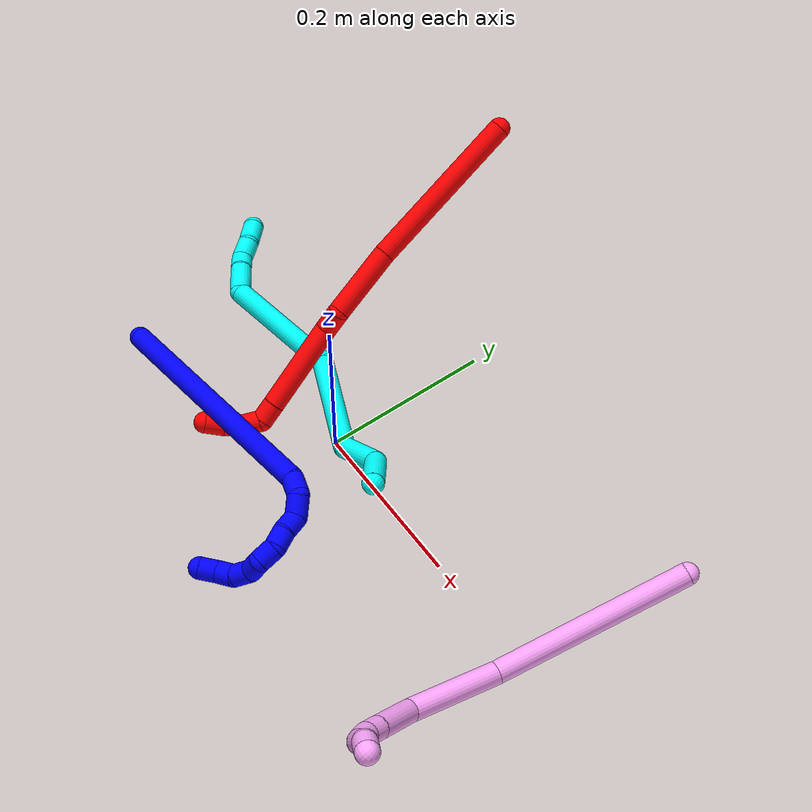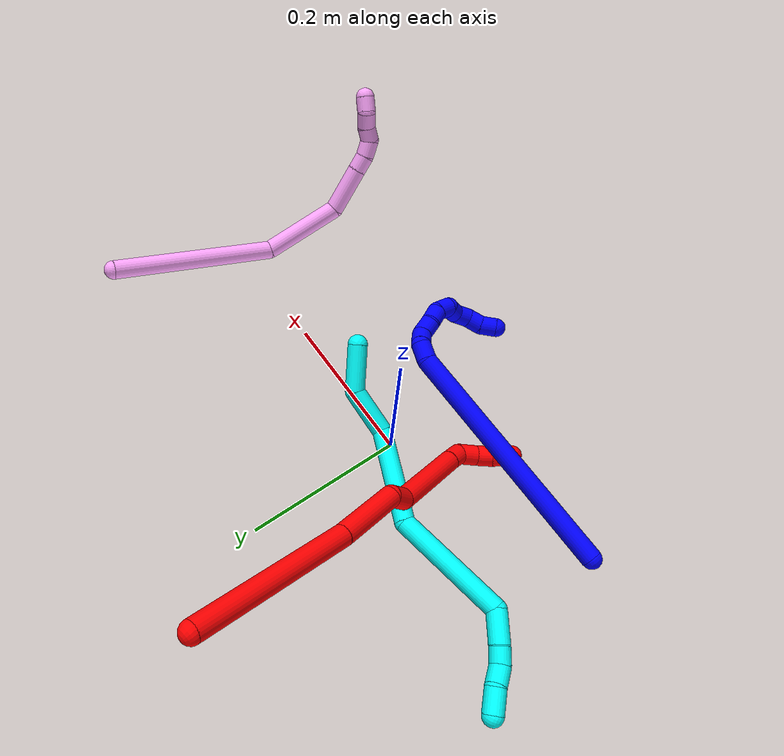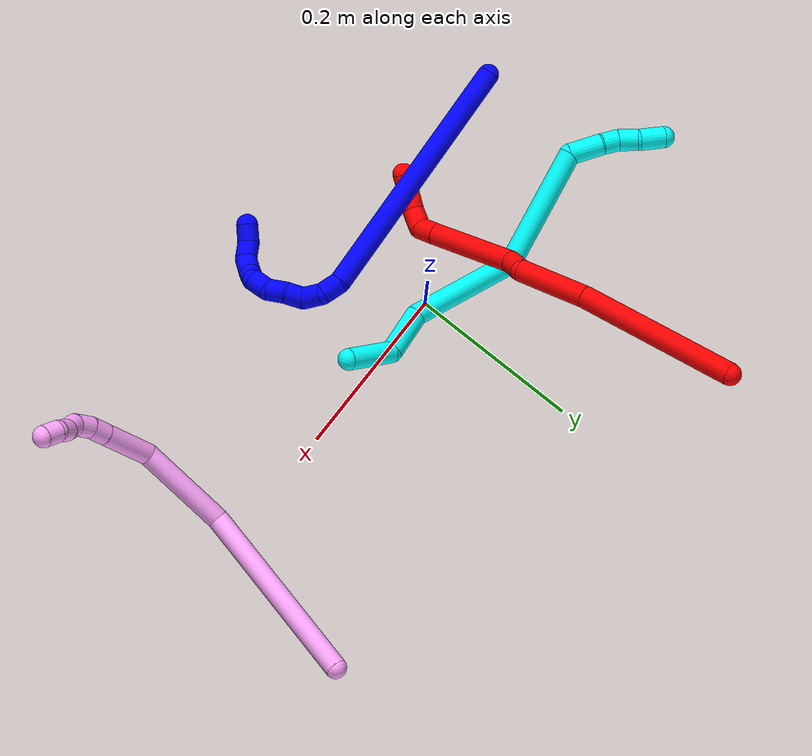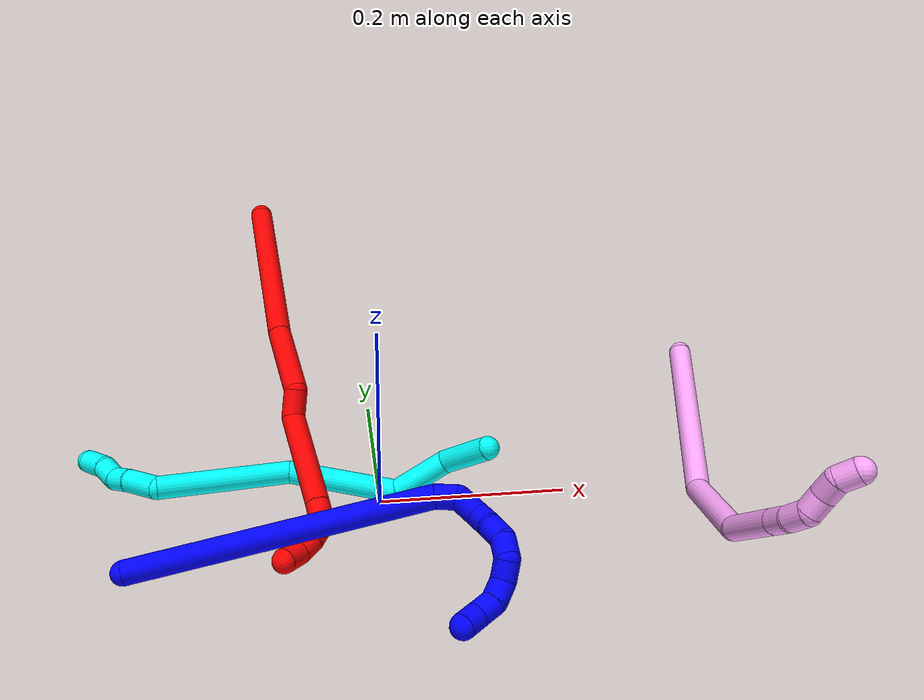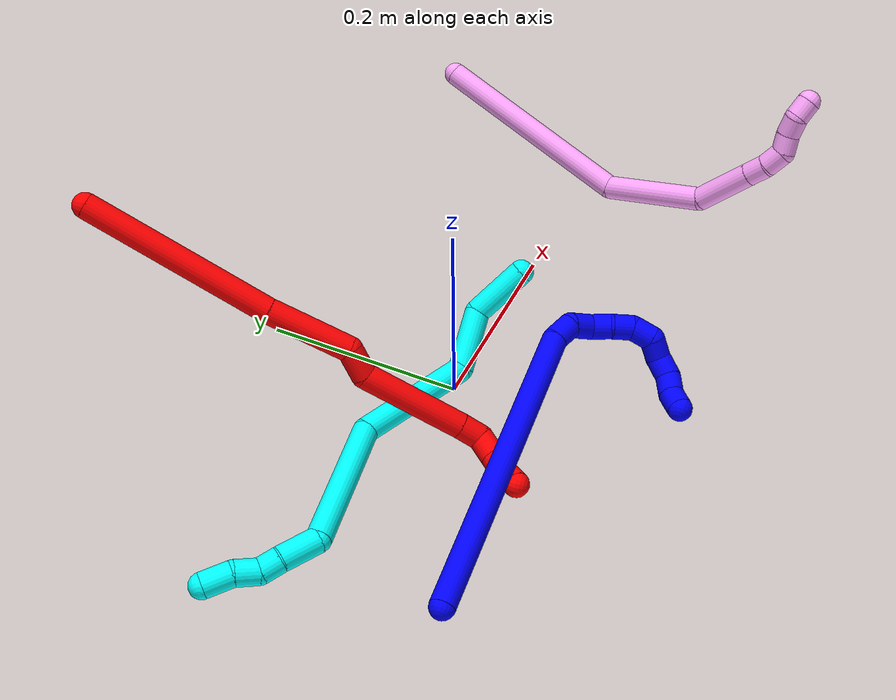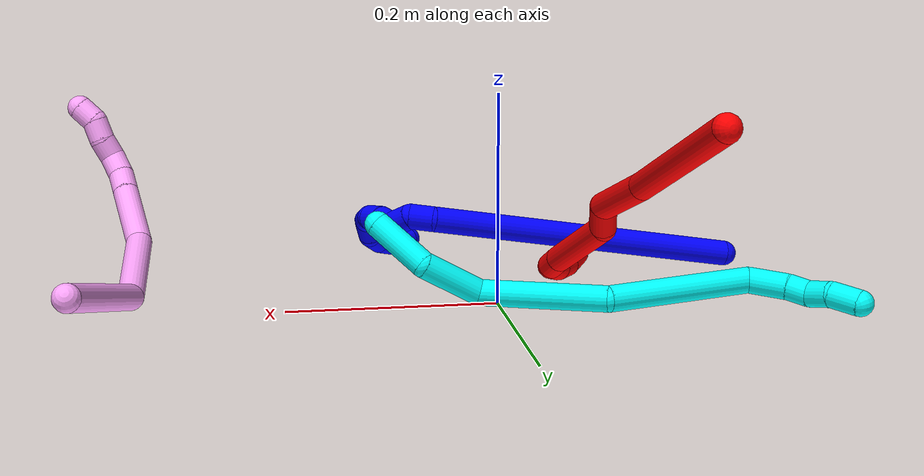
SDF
<sdf version="1.7">
 <world name="default">
  <plugin name="TubeGeneratorPlugin" filename="libtube_generator_plugin.so"/>
  <model name="photoneo_s_sensor">
   <static>1</static>
   <pose>0 0 2 1.57079 1.57079 3.14159</pose>
   <link name="link">
    <inertial><mass>0.1</mass></inertial>
    <sensor name="sensor" type="depth">
     <update_rate>30</update_rate>
     <camera>
      <horizontal_fov>1.22</horizontal_fov>
      <image><width>1920</width><height>1200</height><format>B8G8R8</format></image>
      <clip><near>0.1</near><far>4</far></clip>
      <depth_camera><output>points</output></depth_camera>
     </camera>
     <plugin name="camera_plugin" filename="libgazebo_ros_depth_camera.so">
      <baseline>0.2</baseline>
      <alwaysOn>1</alwaysOn>
      <updateRate>0.0</updateRate>
      <cameraName>camera_ir</cameraName>
      <imageTopicName>/camera/color/image_raw</imageTopicName>
      <cameraInfoTopicName>/camera/color/camera_info</cameraInfoTopicName>
      <depthImageTopicName>/camera/depth/image_raw</depthImageTopicName>
      <depthImageCameraInfoTopicName>/camera/depth/camera_info</depthImageCameraInfoTopicName>
      <pointCloudTopicName>/camera/depth/points</pointCloudTopicName>
      <frameName>fr_optical</frameName>
      <pointCloudCutoff>0.1</pointCloudCutoff>
      <pointCloudCutoffMax>2.0</pointCloudCutoffMax>
      <distortionK1>0</distortionK1>
      <distortionK2>0</distortionK2>
      <distortionK3>0</distortionK3>
      <distortionT1>0</distortionT1>
      <distortionT2>0</distortionT2>
      <CxPrime>0</CxPrime>
      <Cx>0</Cx>
      <Cy>0</Cy>
      <focalLength>0</focalLength>
      <hackBaseline>0</hackBaseline>
     </plugin>
    </sensor>
   </link>
  </model>
  <gravity>0 0 -9.8</gravity>
  <magnetic_field>6e-06 2.3e-05 -4.2e-05</magnetic_field>
  <atmosphere type="adiabatic"/>
  <physics name="default_physics" default="0" type="ode">
   <max_step_size>0.003</max_step_size>
   <real_time_factor>1</real_time_factor>
   <real_time_update_rate>1000</real_time_update_rate>
   <max_contacts>10000</max_contacts>
   <ode>
    <solver>
     <type>quick</type>
     <iters>100</iters>
     <sor>1.3</sor>
     <use_dynamic_moi_rescaling>0</use_dynamic_moi_rescaling>
    </solver>
    <constraints>
     <contact_max_correcting_vel>0</contact_max_correcting_vel>
     <contact_surface_layer>0.001</contact_surface_layer>
     <cfm>0</cfm>
     <erp>0.2</erp>
    </constraints>
   </ode>
  </physics>
  <scene><ambient>0.4 0.4 0.4 1</ambient><background>0.7 0.7 0.7 1</background><shadows>0</shadows></scene>
  <audio><device>default</device></audio>
  <spherical_coordinates>
   <surface_model>EARTH_WGS84</surface_model>
   <latitude_deg>0</latitude_deg>
   <longitude_deg>0</longitude_deg>
   <elevation>0</elevation>
   <heading_deg>0</heading_deg>
  </spherical_coordinates>
  <model name="bin">
   <static>1</static>
   <link name="bottom">
    <collision name="collision-bottom">
     <pose>0 0 -0.01 0 -0 0</pose>
     <geometry><box><size>0.8 0.6 0.02</size></box></geometry>
     <surface>
      <friction><ode><mu>100</mu><mu2>100</mu2></ode></friction>
      <contact><collide_bitmask>65535</collide_bitmask></contact>
     </surface>
    </collision>
   </link>
   <link name="west_wall">
    <collision name="collision-west_wall">
     <pose>-0.41 0 0.1 0 -0 0</pose>
     <geometry><box><size>0.02 0.6 0.2</size></box></geometry>
     <surface>
      <friction><ode><mu>100</mu><mu2>100</mu2></ode></friction>
      <contact><collide_bitmask>65535</collide_bitmask></contact>
     </surface>
    </collision>
   </link>
   <link name="east_wall">
    <collision name="collision-east_wall">
     <pose>0.41 0 0.1 0 -0 0</pose>
     <geometry><box><size>0.02 0.6 0.2</size></box></geometry>
     <surface>
      <friction><ode><mu>100</mu><mu2>100</mu2></ode></friction>
      <contact><collide_bitmask>65535</collide_bitmask></contact>
     </surface>
    </collision>
   </link>
   <link name="south_wall">
    <collision name="collision-south_wall">
     <pose>0 -0.31 0.1 0 -0 0</pose>
     <geometry><box><size>0.8 0.02 0.2</size></box></geometry>
     <surface>
      <friction><ode><mu>100</mu><mu2>100</mu2></ode></friction>
      <contact><collide_bitmask>65535</collide_bitmask></contact>
     </surface>
    </collision>
   </link>
   <link name="north_wall">
    <collision name="collision-north_wall">
     <pose>0 0.31 0.1 0 -0 0</pose>
     <geometry><box><size>0.8 0.02 0.2</size></box></geometry>
     <surface>
      <friction><ode><mu>100</mu><mu2>100</mu2></ode></friction>
      <contact><collide_bitmask>65535</collide_bitmask></contact>
     </surface>
    </collision>
   </link>
  </model>
  <model name="1">
   <static>0</static>
   <link name="1">
    <collision name="collision-cylinder-e_1_1_4">
     <pose>0.029454 0.008319 0.14926 -0.055679 0.194532 -0.005434</pose>
     <geometry><cylinder><radius>0.0125</radius><length>0.304732</length></cylinder></geometry>
     <surface>
      <friction><ode><mu>1.16</mu><mu2>1.16</mu2><slip1>0</slip1><slip2>0</slip2></ode></friction>
      <contact><ode><kp>1e+06</kp><kd>1</kd><max_vel>0</max_vel><min_depth>0.001</min_depth></ode></contact>
     </surface>
    </collision>
    <visual name="visual-cylinder-e_1_1_4">
     <pose>0.029454 0.008319 0.14926 -0.055679 0.194532 -0.005434</pose>
     <geometry><cylinder><radius>0.0125</radius><length>0.304732</length></cylinder></geometry>
     <material><ambient>0 0 1 1</ambient></material>
    </visual>
    <collision name="collision-cylinder-e_2_4_5">
     <pose>0.063606 0.013683 0.308942 0.27637 0.409285 0.057712</pose>
     <geometry><cylinder><radius>0.0125</radius><length>0.023614</length></cylinder></geometry>
     <surface>
      <friction><ode><mu>1.16</mu><mu2>1.16</mu2><slip1>0</slip1><slip2>0</slip2></ode></friction>
      <contact><ode><kp>1e+06</kp><kd>1</kd><max_vel>0</max_vel><min_depth>0.001</min_depth></ode></contact>
     </surface>
    </collision>
    <visual name="visual-cylinder-e_2_4_5">
     <pose>0.063606 0.013683 0.308942 0.27637 0.409285 0.057712</pose>
     <geometry><cylinder><radius>0.0125</radius><length>0.023614</length></cylinder></geometry>
     <material><ambient>0 0 1 1</ambient></material>
    </visual>
    <collision name="collision-cylinder-e_3_5_6">
     <pose>0.078785 0.006841 0.324276 0.669295 1.03205 0.389525</pose>
     <geometry><cylinder><radius>0.0125</radius><length>0.024421</length></cylinder></geometry>
     <surface>
      <friction><ode><mu>1.16</mu><mu2>1.16</mu2><slip1>0</slip1><slip2>0</slip2></ode></friction>
      <contact><ode><kp>1e+06</kp><kd>1</kd><max_vel>0</max_vel><min_depth>0.001</min_depth></ode></contact>
     </surface>
    </collision>
    <visual name="visual-cylinder-e_3_5_6">
     <pose>0.078785 0.006841 0.324276 0.669295 1.03205 0.389525</pose>
     <geometry><cylinder><radius>0.0125</radius><length>0.024421</length></cylinder></geometry>
     <material><ambient>0 0 1 1</ambient></material>
    </visual>
    <collision name="collision-cylinder-e_4_6_7">
     <pose>0.094056 -0.006242 0.332107 1.2635 0.460883 0.340056</pose>
     <geometry><cylinder><radius>0.0125</radius><length>0.021543</length></cylinder></geometry>
     <surface>
      <friction><ode><mu>1.16</mu><mu2>1.16</mu2><slip1>0</slip1><slip2>0</slip2></ode></friction>
      <contact><ode><kp>1e+06</kp><kd>1</kd><max_vel>0</max_vel><min_depth>0.001</min_depth></ode></contact>
     </surface>
    </collision>
    <visual name="visual-cylinder-e_4_6_7">
     <pose>0.094056 -0.006242 0.332107 1.2635 0.460883 0.340056</pose>
     <geometry><cylinder><radius>0.0125</radius><length>0.021543</length></cylinder></geometry>
     <material><ambient>0 0 1 1</ambient></material>
    </visual>
    <collision name="collision-cylinder-e_5_7_8">
     <pose>0.105461 -0.022839 0.338096 1.17755 0.690079 0.471113</pose>
     <geometry><cylinder><radius>0.0125</radius><length>0.02078</length></cylinder></geometry>
     <surface>
      <friction><ode><mu>1.16</mu><mu2>1.16</mu2><slip1>0</slip1><slip2>0</slip2></ode></friction>
      <contact><ode><kp>1e+06</kp><kd>1</kd><max_vel>0</max_vel><min_depth>0.001</min_depth></ode></contact>
     </surface>
    </collision>
    <visual name="visual-cylinder-e_5_7_8">
     <pose>0.105461 -0.022839 0.338096 1.17755 0.690079 0.471113</pose>
     <geometry><cylinder><radius>0.0125</radius><length>0.02078</length></cylinder></geometry>
     <material><ambient>0 0 1 1</ambient></material>
    </visual>
    <collision name="collision-cylinder-e_6_8_9">
     <pose>0.119561 -0.038026 0.339157 1.82336 0.749666 0.939826</pose>
     <geometry><cylinder><radius>0.0125</radius><length>0.021972</length></cylinder></geometry>
     <surface>
      <friction><ode><mu>1.16</mu><mu2>1.16</mu2><slip1>0</slip1><slip2>0</slip2></ode></friction>
      <contact><ode><kp>1e+06</kp><kd>1</kd><max_vel>0</max_vel><min_depth>0.001</min_depth></ode></contact>
     </surface>
    </collision>
    <visual name="visual-cylinder-e_6_8_9">
     <pose>0.119561 -0.038026 0.339157 1.82336 0.749666 0.939826</pose>
     <geometry><cylinder><radius>0.0125</radius><length>0.021972</length></cylinder></geometry>
     <material><ambient>0 0 1 1</ambient></material>
    </visual>
    <collision name="collision-cylinder-e_7_9_10">
     <pose>0.135495 -0.046538 0.331186 3.02024 0.952779 2.90721</pose>
     <geometry><cylinder><radius>0.0125</radius><length>0.020731</length></cylinder></geometry>
     <surface>
      <friction><ode><mu>1.16</mu><mu2>1.16</mu2><slip1>0</slip1><slip2>0</slip2></ode></friction>
      <contact><ode><kp>1e+06</kp><kd>1</kd><max_vel>0</max_vel><min_depth>0.001</min_depth></ode></contact>
     </surface>
    </collision>
    <visual name="visual-cylinder-e_7_9_10">
     <pose>0.135495 -0.046538 0.331186 3.02024 0.952779 2.90721</pose>
     <geometry><cylinder><radius>0.0125</radius><length>0.020731</length></cylinder></geometry>
     <material><ambient>0 0 1 1</ambient></material>
    </visual>
    <collision name="collision-cylinder-e_8_10_11">
     <pose>0.149308 -0.052431 0.317719 2.53881 0.532165 1.43963</pose>
     <geometry><cylinder><radius>0.0125</radius><length>0.021145</length></cylinder></geometry>
     <surface>
      <friction><ode><mu>1.16</mu><mu2>1.16</mu2><slip1>0</slip1><slip2>0</slip2></ode></friction>
      <contact><ode><kp>1e+06</kp><kd>1</kd><max_vel>0</max_vel><min_depth>0.001</min_depth></ode></contact>
     </surface>
    </collision>
    <visual name="visual-cylinder-e_8_10_11">
     <pose>0.149308 -0.052431 0.317719 2.53881 0.532165 1.43963</pose>
     <geometry><cylinder><radius>0.0125</radius><length>0.021145</length></cylinder></geometry>
     <material><ambient>0 0 1 1</ambient></material>
    </visual>
    <collision name="collision-cylinder-e_9_11_12">
     <pose>0.155836 -0.061528 0.301012 2.73779 0.115821 0.552013</pose>
     <geometry><cylinder><radius>0.0125</radius><length>0.02015</length></cylinder></geometry>
     <surface>
      <friction><ode><mu>1.16</mu><mu2>1.16</mu2><slip1>0</slip1><slip2>0</slip2></ode></friction>
      <contact><ode><kp>1e+06</kp><kd>1</kd><max_vel>0</max_vel><min_depth>0.001</min_depth></ode></contact>
     </surface>
    </collision>
    <visual name="visual-cylinder-e_9_11_12">
     <pose>0.155836 -0.061528 0.301012 2.73779 0.115821 0.552013</pose>
     <geometry><cylinder><radius>0.0125</radius><length>0.02015</length></cylinder></geometry>
     <material><ambient>0 0 1 1</ambient></material>
    </visual>
    <collision name="collision-cylinder-e_10_12_2">
     <pose>0.156623 -0.072648 0.284225 2.383 -0.0361 -0.090515</pose>
     <geometry><cylinder><radius>0.0125</radius><length>0.020912</length></cylinder></geometry>
     <surface>
      <friction><ode><mu>1.16</mu><mu2>1.16</mu2><slip1>0</slip1><slip2>0</slip2></ode></friction>
      <contact><ode><kp>1e+06</kp><kd>1</kd><max_vel>0</max_vel><min_depth>0.001</min_depth></ode></contact>
     </surface>
    </collision>
    <visual name="visual-cylinder-e_10_12_2">
     <pose>0.156623 -0.072648 0.284225 2.383 -0.0361 -0.090515</pose>
     <geometry><cylinder><radius>0.0125</radius><length>0.020912</length></cylinder></geometry>
     <material><ambient>0 0 1 1</ambient></material>
    </visual>
    <collision name="collision-sphere-2">
     <pose>0.156246 -0.079836 0.276641 0 -0 0</pose>
     <geometry><sphere><radius>0.0125</radius></sphere></geometry>
     <surface>
      <friction><ode><mu>1.16</mu><mu2>1.16</mu2><slip1>0</slip1><slip2>0</slip2></ode></friction>
      <contact><ode><kp>1e+06</kp><kd>1</kd><max_vel>0</max_vel><min_depth>0.001</min_depth></ode></contact>
     </surface>
    </collision>
    <visual name="visual-sphere-2">
     <pose>0.156246 -0.079836 0.276641 0 -0 0</pose>
     <geometry><sphere><radius>0.0125</radius></sphere></geometry>
     <material><ambient>0 0 1 1</ambient></material>
    </visual>
    <collision name="collision-sphere-12">
     <pose>0.157001 -0.06546 0.291809 0 -0 0</pose>
     <geometry><sphere><radius>0.0125</radius></sphere></geometry>
     <surface>
      <friction><ode><mu>1.16</mu><mu2>1.16</mu2><slip1>0</slip1><slip2>0</slip2></ode></friction>
      <contact><ode><kp>1e+06</kp><kd>1</kd><max_vel>0</max_vel><min_depth>0.001</min_depth></ode></contact>
     </surface>
    </collision>
    <visual name="visual-sphere-12">
     <pose>0.157001 -0.06546 0.291809 0 -0 0</pose>
     <geometry><sphere><radius>0.0125</radius></sphere></geometry>
     <material><ambient>0 0 1 1</ambient></material>
    </visual>
    <collision name="collision-sphere-11">
     <pose>0.154672 -0.057595 0.310215 0 -0 0</pose>
     <geometry><sphere><radius>0.0125</radius></sphere></geometry>
     <surface>
      <friction><ode><mu>1.16</mu><mu2>1.16</mu2><slip1>0</slip1><slip2>0</slip2></ode></friction>
      <contact><ode><kp>1e+06</kp><kd>1</kd><max_vel>0</max_vel><min_depth>0.001</min_depth></ode></contact>
     </surface>
    </collision>
    <visual name="visual-sphere-11">
     <pose>0.154672 -0.057595 0.310215 0 -0 0</pose>
     <geometry><sphere><radius>0.0125</radius></sphere></geometry>
     <material><ambient>0 0 1 1</ambient></material>
    </visual>
    <collision name="collision-sphere-10">
     <pose>0.143943 -0.047266 0.325224 0 -0 0</pose>
     <geometry><sphere><radius>0.0125</radius></sphere></geometry>
     <surface>
      <friction><ode><mu>1.16</mu><mu2>1.16</mu2><slip1>0</slip1><slip2>0</slip2></ode></friction>
      <contact><ode><kp>1e+06</kp><kd>1</kd><max_vel>0</max_vel><min_depth>0.001</min_depth></ode></contact>
     </surface>
    </collision>
    <visual name="visual-sphere-10">
     <pose>0.143943 -0.047266 0.325224 0 -0 0</pose>
     <geometry><sphere><radius>0.0125</radius></sphere></geometry>
     <material><ambient>0 0 1 1</ambient></material>
    </visual>
    <collision name="collision-sphere-9">
     <pose>0.127047 -0.045811 0.337148 0 -0 0</pose>
     <geometry><sphere><radius>0.0125</radius></sphere></geometry>
     <surface>
      <friction><ode><mu>1.16</mu><mu2>1.16</mu2><slip1>0</slip1><slip2>0</slip2></ode></friction>
      <contact><ode><kp>1e+06</kp><kd>1</kd><max_vel>0</max_vel><min_depth>0.001</min_depth></ode></contact>
     </surface>
    </collision>
    <visual name="visual-sphere-9">
     <pose>0.127047 -0.045811 0.337148 0 -0 0</pose>
     <geometry><sphere><radius>0.0125</radius></sphere></geometry>
     <material><ambient>0 0 1 1</ambient></material>
    </visual>
    <collision name="collision-sphere-4">
     <pose>0.058907 0.016639 0.298521 0 -0 0</pose>
     <geometry><sphere><radius>0.0125</radius></sphere></geometry>
     <surface>
      <friction><ode><mu>1.16</mu><mu2>1.16</mu2><slip1>0</slip1><slip2>0</slip2></ode></friction>
      <contact><ode><kp>1e+06</kp><kd>1</kd><max_vel>0</max_vel><min_depth>0.001</min_depth></ode></contact>
     </surface>
    </collision>
    <visual name="visual-sphere-4">
     <pose>0.058907 0.016639 0.298521 0 -0 0</pose>
     <geometry><sphere><radius>0.0125</radius></sphere></geometry>
     <material><ambient>0 0 1 1</ambient></material>
    </visual>
    <collision name="collision-sphere-1">
     <geometry><sphere><radius>0.0125</radius></sphere></geometry>
     <surface>
      <friction><ode><mu>1.16</mu><mu2>1.16</mu2><slip1>0</slip1><slip2>0</slip2></ode></friction>
      <contact><ode><kp>1e+06</kp><kd>1</kd><max_vel>0</max_vel><min_depth>0.001</min_depth></ode></contact>
     </surface>
    </collision>
    <visual name="visual-sphere-1">
     <geometry><sphere><radius>0.0125</radius></sphere></geometry>
     <material><ambient>0 0 1 1</ambient></material>
    </visual>
    <collision name="collision-sphere-8">
     <pose>0.112075 -0.03024 0.341166 0 -0 0</pose>
     <geometry><sphere><radius>0.0125</radius></sphere></geometry>
     <surface>
      <friction><ode><mu>1.16</mu><mu2>1.16</mu2><slip1>0</slip1><slip2>0</slip2></ode></friction>
      <contact><ode><kp>1e+06</kp><kd>1</kd><max_vel>0</max_vel><min_depth>0.001</min_depth></ode></contact>
     </surface>
    </collision>
    <visual name="visual-sphere-8">
     <pose>0.112075 -0.03024 0.341166 0 -0 0</pose>
     <geometry><sphere><radius>0.0125</radius></sphere></geometry>
     <material><ambient>0 0 1 1</ambient></material>
    </visual>
    <collision name="collision-sphere-5">
     <pose>0.068304 0.010727 0.319363 0 -0 0</pose>
     <geometry><sphere><radius>0.0125</radius></sphere></geometry>
     <surface>
      <friction><ode><mu>1.16</mu><mu2>1.16</mu2><slip1>0</slip1><slip2>0</slip2></ode></friction>
      <contact><ode><kp>1e+06</kp><kd>1</kd><max_vel>0</max_vel><min_depth>0.001</min_depth></ode></contact>
     </surface>
    </collision>
    <visual name="visual-sphere-5">
     <pose>0.068304 0.010727 0.319363 0 -0 0</pose>
     <geometry><sphere><radius>0.0125</radius></sphere></geometry>
     <material><ambient>0 0 1 1</ambient></material>
    </visual>
    <collision name="collision-sphere-6">
     <pose>0.089266 0.002954 0.329189 0 -0 0</pose>
     <geometry><sphere><radius>0.0125</radius></sphere></geometry>
     <surface>
      <friction><ode><mu>1.16</mu><mu2>1.16</mu2><slip1>0</slip1><slip2>0</slip2></ode></friction>
      <contact><ode><kp>1e+06</kp><kd>1</kd><max_vel>0</max_vel><min_depth>0.001</min_depth></ode></contact>
     </surface>
    </collision>
    <visual name="visual-sphere-6">
     <pose>0.089266 0.002954 0.329189 0 -0 0</pose>
     <geometry><sphere><radius>0.0125</radius></sphere></geometry>
     <material><ambient>0 0 1 1</ambient></material>
    </visual>
    <collision name="collision-sphere-7">
     <pose>0.098847 -0.015438 0.335025 0 -0 0</pose>
     <geometry><sphere><radius>0.0125</radius></sphere></geometry>
     <surface>
      <friction><ode><mu>1.16</mu><mu2>1.16</mu2><slip1>0</slip1><slip2>0</slip2></ode></friction>
      <contact><ode><kp>1e+06</kp><kd>1</kd><max_vel>0</max_vel><min_depth>0.001</min_depth></ode></contact>
     </surface>
    </collision>
    <visual name="visual-sphere-7">
     <pose>0.098847 -0.015438 0.335025 0 -0 0</pose>
     <geometry><sphere><radius>0.0125</radius></sphere></geometry>
     <material><ambient>0 0 1 1</ambient></material>
    </visual>
    <inertial>
     <pose>0.063255 -0.006503 0.215848 0 -0 0</pose>
     <mass>0.5</mass>
     <inertia>
      <ixx>0.002338</ixx>
      <ixy>0</ixy>
      <ixz>0</ixz>
      <iyy>0.002358</iyy>
      <iyz>0</iyz>
      <izz>-0.000566</izz>
     </inertia>
    </inertial>
   </link>
   <pose>-0.252085 -0.107062 0.01257 -0.857085 0.992884 -0.836896</pose>
  </model>
  <model name="2">
   <static>0</static>
   <link name="2">
    <collision name="collision-cylinder-e_1_1_4">
     <pose>-0.002666 -0.031812 -0.090914 2.80499 -0.027675 -0.162534</pose>
     <geometry><cylinder><radius>0.0125</radius><length>0.192711</length></cylinder></geometry>
     <surface>
      <friction><ode><mu>1.16</mu><mu2>1.16</mu2><slip1>0</slip1><slip2>0</slip2></ode></friction>
      <contact><ode><kp>1e+06</kp><kd>1</kd><max_vel>0</max_vel><min_depth>0.001</min_depth></ode></contact>
     </surface>
    </collision>
    <visual name="visual-cylinder-e_1_1_4">
     <pose>-0.002666 -0.031812 -0.090914 2.80499 -0.027675 -0.162534</pose>
     <geometry><cylinder><radius>0.0125</radius><length>0.192711</length></cylinder></geometry>
     <material><ambient>1 0 0 1</ambient></material>
    </visual>
    <collision name="collision-cylinder-e_2_4_5">
     <pose>-0.010011 -0.075739 -0.221367 2.84425 -0.112647 -0.720088</pose>
     <geometry><cylinder><radius>0.0125</radius><length>0.083236</length></cylinder></geometry>
     <surface>
      <friction><ode><mu>1.16</mu><mu2>1.16</mu2><slip1>0</slip1><slip2>0</slip2></ode></friction>
      <contact><ode><kp>1e+06</kp><kd>1</kd><max_vel>0</max_vel><min_depth>0.001</min_depth></ode></contact>
     </surface>
    </collision>
    <visual name="visual-cylinder-e_2_4_5">
     <pose>-0.010011 -0.075739 -0.221367 2.84425 -0.112647 -0.720088</pose>
     <geometry><cylinder><radius>0.0125</radius><length>0.083236</length></cylinder></geometry>
     <material><ambient>1 0 0 1</ambient></material>
    </visual>
    <collision name="collision-cylinder-e_3_5_6">
     <pose>-0.014433 -0.09963 -0.269666 2.2104 0.017433 0.034694</pose>
     <geometry><cylinder><radius>0.0125</radius><length>0.029355</length></cylinder></geometry>
     <surface>
      <friction><ode><mu>1.16</mu><mu2>1.16</mu2><slip1>0</slip1><slip2>0</slip2></ode></friction>
      <contact><ode><kp>1e+06</kp><kd>1</kd><max_vel>0</max_vel><min_depth>0.001</min_depth></ode></contact>
     </surface>
    </collision>
    <visual name="visual-cylinder-e_3_5_6">
     <pose>-0.014433 -0.09963 -0.269666 2.2104 0.017433 0.034694</pose>
     <geometry><cylinder><radius>0.0125</radius><length>0.029355</length></cylinder></geometry>
     <material><ambient>1 0 0 1</ambient></material>
    </visual>
    <collision name="collision-cylinder-e_4_6_7">
     <pose>-0.022236 -0.130351 -0.326367 2.76522 -0.15507 -0.774692</pose>
     <geometry><cylinder><radius>0.0125</radius><length>0.104352</length></cylinder></geometry>
     <surface>
      <friction><ode><mu>1.16</mu><mu2>1.16</mu2><slip1>0</slip1><slip2>0</slip2></ode></friction>
      <contact><ode><kp>1e+06</kp><kd>1</kd><max_vel>0</max_vel><min_depth>0.001</min_depth></ode></contact>
     </surface>
    </collision>
    <visual name="visual-cylinder-e_4_6_7">
     <pose>-0.022236 -0.130351 -0.326367 2.76522 -0.15507 -0.774692</pose>
     <geometry><cylinder><radius>0.0125</radius><length>0.104352</length></cylinder></geometry>
     <material><ambient>1 0 0 1</ambient></material>
    </visual>
    <collision name="collision-cylinder-e_5_7_8">
     <pose>-0.031864 -0.15394 -0.384694 2.72126 -0.137145 -0.622961</pose>
     <geometry><cylinder><radius>0.0125</radius><length>0.022967</length></cylinder></geometry>
     <surface>
      <friction><ode><mu>1.16</mu><mu2>1.16</mu2><slip1>0</slip1><slip2>0</slip2></ode></friction>
      <contact><ode><kp>1e+06</kp><kd>1</kd><max_vel>0</max_vel><min_depth>0.001</min_depth></ode></contact>
     </surface>
    </collision>
    <visual name="visual-cylinder-e_5_7_8">
     <pose>-0.031864 -0.15394 -0.384694 2.72126 -0.137145 -0.622961</pose>
     <geometry><cylinder><radius>0.0125</radius><length>0.022967</length></cylinder></geometry>
     <material><ambient>1 0 0 1</ambient></material>
    </visual>
    <collision name="collision-cylinder-e_6_8_9">
     <pose>-0.026909 -0.163092 -0.403706 2.65994 0.590534 1.78305</pose>
     <geometry><cylinder><radius>0.0125</radius><length>0.023439</length></cylinder></geometry>
     <surface>
      <friction><ode><mu>1.16</mu><mu2>1.16</mu2><slip1>0</slip1><slip2>0</slip2></ode></friction>
      <contact><ode><kp>1e+06</kp><kd>1</kd><max_vel>0</max_vel><min_depth>0.001</min_depth></ode></contact>
     </surface>
    </collision>
    <visual name="visual-cylinder-e_6_8_9">
     <pose>-0.026909 -0.163092 -0.403706 2.65994 0.590534 1.78305</pose>
     <geometry><cylinder><radius>0.0125</radius><length>0.023439</length></cylinder></geometry>
     <material><ambient>1 0 0 1</ambient></material>
    </visual>
    <collision name="collision-cylinder-e_7_9_10">
     <pose>-0.01306 -0.169239 -0.419267 2.90965 0.799183 2.60328</pose>
     <geometry><cylinder><radius>0.0125</radius><length>0.020434</length></cylinder></geometry>
     <surface>
      <friction><ode><mu>1.16</mu><mu2>1.16</mu2><slip1>0</slip1><slip2>0</slip2></ode></friction>
      <contact><ode><kp>1e+06</kp><kd>1</kd><max_vel>0</max_vel><min_depth>0.001</min_depth></ode></contact>
     </surface>
    </collision>
    <visual name="visual-cylinder-e_7_9_10">
     <pose>-0.01306 -0.169239 -0.419267 2.90965 0.799183 2.60328</pose>
     <geometry><cylinder><radius>0.0125</radius><length>0.020434</length></cylinder></geometry>
     <material><ambient>1 0 0 1</ambient></material>
    </visual>
    <collision name="collision-cylinder-e_8_10_2">
     <pose>0.003174 -0.169658 -0.433767 -2.98185 0.860433 -2.79622</pose>
     <geometry><cylinder><radius>0.0125</radius><length>0.023506</length></cylinder></geometry>
     <surface>
      <friction><ode><mu>1.16</mu><mu2>1.16</mu2><slip1>0</slip1><slip2>0</slip2></ode></friction>
      <contact><ode><kp>1e+06</kp><kd>1</kd><max_vel>0</max_vel><min_depth>0.001</min_depth></ode></contact>
     </surface>
    </collision>
    <visual name="visual-cylinder-e_8_10_2">
     <pose>0.003174 -0.169658 -0.433767 -2.98185 0.860433 -2.79622</pose>
     <geometry><cylinder><radius>0.0125</radius><length>0.023506</length></cylinder></geometry>
     <material><ambient>1 0 0 1</ambient></material>
    </visual>
    <collision name="collision-sphere-2">
     <pose>0.012084 -0.168439 -0.441334 0 -0 0</pose>
     <geometry><sphere><radius>0.0125</radius></sphere></geometry>
     <surface>
      <friction><ode><mu>1.16</mu><mu2>1.16</mu2><slip1>0</slip1><slip2>0</slip2></ode></friction>
      <contact><ode><kp>1e+06</kp><kd>1</kd><max_vel>0</max_vel><min_depth>0.001</min_depth></ode></contact>
     </surface>
    </collision>
    <visual name="visual-sphere-2">
     <pose>0.012084 -0.168439 -0.441334 0 -0 0</pose>
     <geometry><sphere><radius>0.0125</radius></sphere></geometry>
     <material><ambient>1 0 0 1</ambient></material>
    </visual>
    <collision name="collision-sphere-10">
     <pose>-0.005737 -0.170877 -0.4262 0 -0 0</pose>
     <geometry><sphere><radius>0.0125</radius></sphere></geometry>
     <surface>
      <friction><ode><mu>1.16</mu><mu2>1.16</mu2><slip1>0</slip1><slip2>0</slip2></ode></friction>
      <contact><ode><kp>1e+06</kp><kd>1</kd><max_vel>0</max_vel><min_depth>0.001</min_depth></ode></contact>
     </surface>
    </collision>
    <visual name="visual-sphere-10">
     <pose>-0.005737 -0.170877 -0.4262 0 -0 0</pose>
     <geometry><sphere><radius>0.0125</radius></sphere></geometry>
     <material><ambient>1 0 0 1</ambient></material>
    </visual>
    <collision name="collision-sphere-9">
     <pose>-0.020383 -0.167602 -0.412333 0 -0 0</pose>
     <geometry><sphere><radius>0.0125</radius></sphere></geometry>
     <surface>
      <friction><ode><mu>1.16</mu><mu2>1.16</mu2><slip1>0</slip1><slip2>0</slip2></ode></friction>
      <contact><ode><kp>1e+06</kp><kd>1</kd><max_vel>0</max_vel><min_depth>0.001</min_depth></ode></contact>
     </surface>
    </collision>
    <visual name="visual-sphere-9">
     <pose>-0.020383 -0.167602 -0.412333 0 -0 0</pose>
     <geometry><sphere><radius>0.0125</radius></sphere></geometry>
     <material><ambient>1 0 0 1</ambient></material>
    </visual>
    <collision name="collision-sphere-4">
     <pose>-0.005333 -0.063624 -0.181827 0 -0 0</pose>
     <geometry><sphere><radius>0.0125</radius></sphere></geometry>
     <surface>
      <friction><ode><mu>1.16</mu><mu2>1.16</mu2><slip1>0</slip1><slip2>0</slip2></ode></friction>
      <contact><ode><kp>1e+06</kp><kd>1</kd><max_vel>0</max_vel><min_depth>0.001</min_depth></ode></contact>
     </surface>
    </collision>
    <visual name="visual-sphere-4">
     <pose>-0.005333 -0.063624 -0.181827 0 -0 0</pose>
     <geometry><sphere><radius>0.0125</radius></sphere></geometry>
     <material><ambient>1 0 0 1</ambient></material>
    </visual>
    <collision name="collision-sphere-1">
     <geometry><sphere><radius>0.0125</radius></sphere></geometry>
     <surface>
      <friction><ode><mu>1.16</mu><mu2>1.16</mu2><slip1>0</slip1><slip2>0</slip2></ode></friction>
      <contact><ode><kp>1e+06</kp><kd>1</kd><max_vel>0</max_vel><min_depth>0.001</min_depth></ode></contact>
     </surface>
    </collision>
    <visual name="visual-sphere-1">
     <geometry><sphere><radius>0.0125</radius></sphere></geometry>
     <material><ambient>1 0 0 1</ambient></material>
    </visual>
    <collision name="collision-sphere-8">
     <pose>-0.033434 -0.158582 -0.395079 0 -0 0</pose>
     <geometry><sphere><radius>0.0125</radius></sphere></geometry>
     <surface>
      <friction><ode><mu>1.16</mu><mu2>1.16</mu2><slip1>0</slip1><slip2>0</slip2></ode></friction>
      <contact><ode><kp>1e+06</kp><kd>1</kd><max_vel>0</max_vel><min_depth>0.001</min_depth></ode></contact>
     </surface>
    </collision>
    <visual name="visual-sphere-8">
     <pose>-0.033434 -0.158582 -0.395079 0 -0 0</pose>
     <geometry><sphere><radius>0.0125</radius></sphere></geometry>
     <material><ambient>1 0 0 1</ambient></material>
    </visual>
    <collision name="collision-sphere-5">
     <pose>-0.014689 -0.087855 -0.260906 0 -0 0</pose>
     <geometry><sphere><radius>0.0125</radius></sphere></geometry>
     <surface>
      <friction><ode><mu>1.16</mu><mu2>1.16</mu2><slip1>0</slip1><slip2>0</slip2></ode></friction>
      <contact><ode><kp>1e+06</kp><kd>1</kd><max_vel>0</max_vel><min_depth>0.001</min_depth></ode></contact>
     </surface>
    </collision>
    <visual name="visual-sphere-5">
     <pose>-0.014689 -0.087855 -0.260906 0 -0 0</pose>
     <geometry><sphere><radius>0.0125</radius></sphere></geometry>
     <material><ambient>1 0 0 1</ambient></material>
    </visual>
    <collision name="collision-sphere-6">
     <pose>-0.014177 -0.111404 -0.278425 0 -0 0</pose>
     <geometry><sphere><radius>0.0125</radius></sphere></geometry>
     <surface>
      <friction><ode><mu>1.16</mu><mu2>1.16</mu2><slip1>0</slip1><slip2>0</slip2></ode></friction>
      <contact><ode><kp>1e+06</kp><kd>1</kd><max_vel>0</max_vel><min_depth>0.001</min_depth></ode></contact>
     </surface>
    </collision>
    <visual name="visual-sphere-6">
     <pose>-0.014177 -0.111404 -0.278425 0 -0 0</pose>
     <geometry><sphere><radius>0.0125</radius></sphere></geometry>
     <material><ambient>1 0 0 1</ambient></material>
    </visual>
    <collision name="collision-sphere-7">
     <pose>-0.030294 -0.149298 -0.374309 0 -0 0</pose>
     <geometry><sphere><radius>0.0125</radius></sphere></geometry>
     <surface>
      <friction><ode><mu>1.16</mu><mu2>1.16</mu2><slip1>0</slip1><slip2>0</slip2></ode></friction>
      <contact><ode><kp>1e+06</kp><kd>1</kd><max_vel>0</max_vel><min_depth>0.001</min_depth></ode></contact>
     </surface>
    </collision>
    <visual name="visual-sphere-7">
     <pose>-0.030294 -0.149298 -0.374309 0 -0 0</pose>
     <geometry><sphere><radius>0.0125</radius></sphere></geometry>
     <material><ambient>1 0 0 1</ambient></material>
    </visual>
    <inertial>
     <pose>-0.011292 -0.087533 -0.22996 0 -0 0</pose>
     <mass>0.5</mass>
     <inertia>
      <ixx>0.000508</ixx>
      <ixy>0</ixy>
      <ixz>0</ixz>
      <iyy>-0.00087</iyy>
      <iyz>0</iyz>
      <izz>0.000254</izz>
     </inertia>
    </inertial>
   </link>
   <pose>-0.119553 0.315063 0.219894 1.46569 -0.270058 -2.9343</pose>
  </model>
  <model name="3">
   <static>0</static>
   <link name="3">
    <collision name="collision-cylinder-e_1_1_4">
     <pose>-0.026685 -0.009071 0.009317 0.771976 -1.11737 -0.497538</pose>
     <geometry><cylinder><radius>0.0125</radius><length>0.05937</length></cylinder></geometry>
     <surface>
      <friction><ode><mu>1.16</mu><mu2>1.16</mu2><slip1>0</slip1><slip2>0</slip2></ode></friction>
      <contact><ode><kp>1e+06</kp><kd>1</kd><max_vel>0</max_vel><min_depth>0.001</min_depth></ode></contact>
     </surface>
    </collision>
    <visual name="visual-cylinder-e_1_1_4">
     <pose>-0.026685 -0.009071 0.009317 0.771976 -1.11737 -0.497538</pose>
     <geometry><cylinder><radius>0.0125</radius><length>0.05937</length></cylinder></geometry>
     <material><ambient>0.003922 1 0.996078 1</ambient></material>
    </visual>
    <collision name="collision-cylinder-e_2_4_5">
     <pose>-0.067351 -0.033533 0.041379 0.594928 -0.470875 -0.146815</pose>
     <geometry><cylinder><radius>0.0125</radius><length>0.061632</length></cylinder></geometry>
     <surface>
      <friction><ode><mu>1.16</mu><mu2>1.16</mu2><slip1>0</slip1><slip2>0</slip2></ode></friction>
      <contact><ode><kp>1e+06</kp><kd>1</kd><max_vel>0</max_vel><min_depth>0.001</min_depth></ode></contact>
     </surface>
    </collision>
    <visual name="visual-cylinder-e_2_4_5">
     <pose>-0.067351 -0.033533 0.041379 0.594928 -0.470875 -0.146815</pose>
     <geometry><cylinder><radius>0.0125</radius><length>0.061632</length></cylinder></geometry>
     <material><ambient>0.003922 1 0.996078 1</ambient></material>
    </visual>
    <collision name="collision-cylinder-e_3_5_6">
     <pose>-0.123989 -0.039027 0.10733 -0.225172 -0.766222 0.091072</pose>
     <geometry><cylinder><radius>0.0125</radius><length>0.123035</length></cylinder></geometry>
     <surface>
      <friction><ode><mu>1.16</mu><mu2>1.16</mu2><slip1>0</slip1><slip2>0</slip2></ode></friction>
      <contact><ode><kp>1e+06</kp><kd>1</kd><max_vel>0</max_vel><min_depth>0.001</min_depth></ode></contact>
     </surface>
    </collision>
    <visual name="visual-cylinder-e_3_5_6">
     <pose>-0.123989 -0.039027 0.10733 -0.225172 -0.766222 0.091072</pose>
     <geometry><cylinder><radius>0.0125</radius><length>0.123035</length></cylinder></geometry>
     <material><ambient>0.003922 1 0.996078 1</ambient></material>
    </visual>
    <collision name="collision-cylinder-e_4_6_7">
     <pose>-0.184019 -0.032196 0.21972 0.044276 -0.245789 -0.00547</pose>
     <geometry><cylinder><radius>0.0125</radius><length>0.142796</length></cylinder></geometry>
     <surface>
      <friction><ode><mu>1.16</mu><mu2>1.16</mu2><slip1>0</slip1><slip2>0</slip2></ode></friction>
      <contact><ode><kp>1e+06</kp><kd>1</kd><max_vel>0</max_vel><min_depth>0.001</min_depth></ode></contact>
     </surface>
    </collision>
    <visual name="visual-cylinder-e_4_6_7">
     <pose>-0.184019 -0.032196 0.21972 0.044276 -0.245789 -0.00547</pose>
     <geometry><cylinder><radius>0.0125</radius><length>0.142796</length></cylinder></geometry>
     <material><ambient>0.003922 1 0.996078 1</ambient></material>
    </visual>
    <collision name="collision-cylinder-e_5_7_8">
     <pose>-0.217413 -0.032206 0.299566 -0.279029 -0.965324 0.146902</pose>
     <geometry><cylinder><radius>0.0125</radius><length>0.038971</length></cylinder></geometry>
     <surface>
      <friction><ode><mu>1.16</mu><mu2>1.16</mu2><slip1>0</slip1><slip2>0</slip2></ode></friction>
      <contact><ode><kp>1e+06</kp><kd>1</kd><max_vel>0</max_vel><min_depth>0.001</min_depth></ode></contact>
     </surface>
    </collision>
    <visual name="visual-cylinder-e_5_7_8">
     <pose>-0.217413 -0.032206 0.299566 -0.279029 -0.965324 0.146902</pose>
     <geometry><cylinder><radius>0.0125</radius><length>0.038971</length></cylinder></geometry>
     <material><ambient>0.003922 1 0.996078 1</ambient></material>
    </visual>
    <collision name="collision-cylinder-e_6_8_9">
     <pose>-0.242584 -0.028802 0.315297 -0.068964 -1.06382 0.040595</pose>
     <geometry><cylinder><radius>0.0125</radius><length>0.020934</length></cylinder></geometry>
     <surface>
      <friction><ode><mu>1.16</mu><mu2>1.16</mu2><slip1>0</slip1><slip2>0</slip2></ode></friction>
      <contact><ode><kp>1e+06</kp><kd>1</kd><max_vel>0</max_vel><min_depth>0.001</min_depth></ode></contact>
     </surface>
    </collision>
    <visual name="visual-cylinder-e_6_8_9">
     <pose>-0.242584 -0.028802 0.315297 -0.068964 -1.06382 0.040595</pose>
     <geometry><cylinder><radius>0.0125</radius><length>0.020934</length></cylinder></geometry>
     <material><ambient>0.003922 1 0.996078 1</ambient></material>
    </visual>
    <collision name="collision-cylinder-e_7_9_10">
     <pose>-0.261741 -0.022856 0.323753 -1.02656 -0.991856 0.592008</pose>
     <geometry><cylinder><radius>0.0125</radius><length>0.023909</length></cylinder></geometry>
     <surface>
      <friction><ode><mu>1.16</mu><mu2>1.16</mu2><slip1>0</slip1><slip2>0</slip2></ode></friction>
      <contact><ode><kp>1e+06</kp><kd>1</kd><max_vel>0</max_vel><min_depth>0.001</min_depth></ode></contact>
     </surface>
    </collision>
    <visual name="visual-cylinder-e_7_9_10">
     <pose>-0.261741 -0.022856 0.323753 -1.02656 -0.991856 0.592008</pose>
     <geometry><cylinder><radius>0.0125</radius><length>0.023909</length></cylinder></geometry>
     <material><ambient>0.003922 1 0.996078 1</ambient></material>
    </visual>
    <collision name="collision-cylinder-e_8_10_2">
     <pose>-0.285176 -0.015049 0.332635 -0.382564 -1.15533 0.251128</pose>
     <geometry><cylinder><radius>0.0125</radius><length>0.029354</length></cylinder></geometry>
     <surface>
      <friction><ode><mu>1.16</mu><mu2>1.16</mu2><slip1>0</slip1><slip2>0</slip2></ode></friction>
      <contact><ode><kp>1e+06</kp><kd>1</kd><max_vel>0</max_vel><min_depth>0.001</min_depth></ode></contact>
     </surface>
    </collision>
    <visual name="visual-cylinder-e_8_10_2">
     <pose>-0.285176 -0.015049 0.332635 -0.382564 -1.15533 0.251128</pose>
     <geometry><cylinder><radius>0.0125</radius><length>0.029354</length></cylinder></geometry>
     <material><ambient>0.003922 1 0.996078 1</ambient></material>
    </visual>
    <collision name="collision-sphere-2">
     <pose>-0.298604 -0.012837 0.338131 0 -0 0</pose>
     <geometry><sphere><radius>0.0125</radius></sphere></geometry>
     <surface>
      <friction><ode><mu>1.16</mu><mu2>1.16</mu2><slip1>0</slip1><slip2>0</slip2></ode></friction>
      <contact><ode><kp>1e+06</kp><kd>1</kd><max_vel>0</max_vel><min_depth>0.001</min_depth></ode></contact>
     </surface>
    </collision>
    <visual name="visual-sphere-2">
     <pose>-0.298604 -0.012837 0.338131 0 -0 0</pose>
     <geometry><sphere><radius>0.0125</radius></sphere></geometry>
     <material><ambient>0.003922 1 0.996078 1</ambient></material>
    </visual>
    <collision name="collision-sphere-10">
     <pose>-0.271747 -0.01726 0.32714 0 -0 0</pose>
     <geometry><sphere><radius>0.0125</radius></sphere></geometry>
     <surface>
      <friction><ode><mu>1.16</mu><mu2>1.16</mu2><slip1>0</slip1><slip2>0</slip2></ode></friction>
      <contact><ode><kp>1e+06</kp><kd>1</kd><max_vel>0</max_vel><min_depth>0.001</min_depth></ode></contact>
     </surface>
    </collision>
    <visual name="visual-sphere-10">
     <pose>-0.271747 -0.01726 0.32714 0 -0 0</pose>
     <geometry><sphere><radius>0.0125</radius></sphere></geometry>
     <material><ambient>0.003922 1 0.996078 1</ambient></material>
    </visual>
    <collision name="collision-sphere-9">
     <pose>-0.251735 -0.028452 0.320367 0 -0 0</pose>
     <geometry><sphere><radius>0.0125</radius></sphere></geometry>
     <surface>
      <friction><ode><mu>1.16</mu><mu2>1.16</mu2><slip1>0</slip1><slip2>0</slip2></ode></friction>
      <contact><ode><kp>1e+06</kp><kd>1</kd><max_vel>0</max_vel><min_depth>0.001</min_depth></ode></contact>
     </surface>
    </collision>
    <visual name="visual-sphere-9">
     <pose>-0.251735 -0.028452 0.320367 0 -0 0</pose>
     <geometry><sphere><radius>0.0125</radius></sphere></geometry>
     <material><ambient>0.003922 1 0.996078 1</ambient></material>
    </visual>
    <collision name="collision-sphere-4">
     <pose>-0.053371 -0.018141 0.018635 0 -0 0</pose>
     <geometry><sphere><radius>0.0125</radius></sphere></geometry>
     <surface>
      <friction><ode><mu>1.16</mu><mu2>1.16</mu2><slip1>0</slip1><slip2>0</slip2></ode></friction>
      <contact><ode><kp>1e+06</kp><kd>1</kd><max_vel>0</max_vel><min_depth>0.001</min_depth></ode></contact>
     </surface>
    </collision>
    <visual name="visual-sphere-4">
     <pose>-0.053371 -0.018141 0.018635 0 -0 0</pose>
     <geometry><sphere><radius>0.0125</radius></sphere></geometry>
     <material><ambient>0.003922 1 0.996078 1</ambient></material>
    </visual>
    <collision name="collision-sphere-1">
     <geometry><sphere><radius>0.0125</radius></sphere></geometry>
     <surface>
      <friction><ode><mu>1.16</mu><mu2>1.16</mu2><slip1>0</slip1><slip2>0</slip2></ode></friction>
      <contact><ode><kp>1e+06</kp><kd>1</kd><max_vel>0</max_vel><min_depth>0.001</min_depth></ode></contact>
     </surface>
    </collision>
    <visual name="visual-sphere-1">
     <geometry><sphere><radius>0.0125</radius></sphere></geometry>
     <material><ambient>0.003922 1 0.996078 1</ambient></material>
    </visual>
    <collision name="collision-sphere-8">
     <pose>-0.233434 -0.029152 0.310227 0 -0 0</pose>
     <geometry><sphere><radius>0.0125</radius></sphere></geometry>
     <surface>
      <friction><ode><mu>1.16</mu><mu2>1.16</mu2><slip1>0</slip1><slip2>0</slip2></ode></friction>
      <contact><ode><kp>1e+06</kp><kd>1</kd><max_vel>0</max_vel><min_depth>0.001</min_depth></ode></contact>
     </surface>
    </collision>
    <visual name="visual-sphere-8">
     <pose>-0.233434 -0.029152 0.310227 0 -0 0</pose>
     <geometry><sphere><radius>0.0125</radius></sphere></geometry>
     <material><ambient>0.003922 1 0.996078 1</ambient></material>
    </visual>
    <collision name="collision-sphere-5">
     <pose>-0.081331 -0.048924 0.064123 0 -0 0</pose>
     <geometry><sphere><radius>0.0125</radius></sphere></geometry>
     <surface>
      <friction><ode><mu>1.16</mu><mu2>1.16</mu2><slip1>0</slip1><slip2>0</slip2></ode></friction>
      <contact><ode><kp>1e+06</kp><kd>1</kd><max_vel>0</max_vel><min_depth>0.001</min_depth></ode></contact>
     </surface>
    </collision>
    <visual name="visual-sphere-5">
     <pose>-0.081331 -0.048924 0.064123 0 -0 0</pose>
     <geometry><sphere><radius>0.0125</radius></sphere></geometry>
     <material><ambient>0.003922 1 0.996078 1</ambient></material>
    </visual>
    <collision name="collision-sphere-6">
     <pose>-0.166646 -0.02913 0.150536 0 -0 0</pose>
     <geometry><sphere><radius>0.0125</radius></sphere></geometry>
     <surface>
      <friction><ode><mu>1.16</mu><mu2>1.16</mu2><slip1>0</slip1><slip2>0</slip2></ode></friction>
      <contact><ode><kp>1e+06</kp><kd>1</kd><max_vel>0</max_vel><min_depth>0.001</min_depth></ode></contact>
     </surface>
    </collision>
    <visual name="visual-sphere-6">
     <pose>-0.166646 -0.02913 0.150536 0 -0 0</pose>
     <geometry><sphere><radius>0.0125</radius></sphere></geometry>
     <material><ambient>0.003922 1 0.996078 1</ambient></material>
    </visual>
    <collision name="collision-sphere-7">
     <pose>-0.201391 -0.035261 0.288904 0 -0 0</pose>
     <geometry><sphere><radius>0.0125</radius></sphere></geometry>
     <surface>
      <friction><ode><mu>1.16</mu><mu2>1.16</mu2><slip1>0</slip1><slip2>0</slip2></ode></friction>
      <contact><ode><kp>1e+06</kp><kd>1</kd><max_vel>0</max_vel><min_depth>0.001</min_depth></ode></contact>
     </surface>
    </collision>
    <visual name="visual-sphere-7">
     <pose>-0.201391 -0.035261 0.288904 0 -0 0</pose>
     <geometry><sphere><radius>0.0125</radius></sphere></geometry>
     <material><ambient>0.003922 1 0.996078 1</ambient></material>
    </visual>
    <inertial>
     <pose>-0.150894 -0.029701 0.166926 0 -0 0</pose>
     <mass>0.5</mass>
     <inertia>
      <ixx>0.000369</ixx>
      <ixy>0</ixy>
      <ixz>0</ixz>
      <iyy>0.000458</iyy>
      <iyz>0</iyz>
      <izz>0.000236</izz>
     </inertia>
    </inertial>
   </link>
   <pose>0.110128 -0.023314 0.074865 1.37917 -0.379012 -1.11608</pose>
  </model>
  <model name="4">
   <static>0</static>
   <link name="4">
    <collision name="collision-cylinder-e_1_1_4">
     <pose>0.033879 -0.022423 0.103484 0.213387 0.309668 0.03343</pose>
     <geometry><cylinder><radius>0.0125</radius><length>0.222347</length></cylinder></geometry>
     <surface>
      <friction><ode><mu>1.16</mu><mu2>1.16</mu2><slip1>0</slip1><slip2>0</slip2></ode></friction>
      <contact><ode><kp>1e+06</kp><kd>1</kd><max_vel>0</max_vel><min_depth>0.001</min_depth></ode></contact>
     </surface>
    </collision>
    <visual name="visual-cylinder-e_1_1_4">
     <pose>0.033879 -0.022423 0.103484 0.213387 0.309668 0.03343</pose>
     <geometry><cylinder><radius>0.0125</radius><length>0.222347</length></cylinder></geometry>
     <material><ambient>1 0.65098 0.996078 1</ambient></material>
    </visual>
    <collision name="collision-cylinder-e_2_4_5">
     <pose>0.0927 -0.07853 0.242159 0.763493 0.473208 0.192989</pose>
     <geometry><cylinder><radius>0.0125</radius><length>0.109455</length></cylinder></geometry>
     <surface>
      <friction><ode><mu>1.16</mu><mu2>1.16</mu2><slip1>0</slip1><slip2>0</slip2></ode></friction>
      <contact><ode><kp>1e+06</kp><kd>1</kd><max_vel>0</max_vel><min_depth>0.001</min_depth></ode></contact>
     </surface>
    </collision>
    <visual name="visual-cylinder-e_2_4_5">
     <pose>0.0927 -0.07853 0.242159 0.763493 0.473208 0.192989</pose>
     <geometry><cylinder><radius>0.0125</radius><length>0.109455</length></cylinder></geometry>
     <material><ambient>1 0.65098 0.996078 1</ambient></material>
    </visual>
    <collision name="collision-cylinder-e_3_5_6">
     <pose>0.129704 -0.140833 0.283541 1.35781 0.390742 0.316673</pose>
     <geometry><cylinder><radius>0.0125</radius><length>0.063337</length></cylinder></geometry>
     <surface>
      <friction><ode><mu>1.16</mu><mu2>1.16</mu2><slip1>0</slip1><slip2>0</slip2></ode></friction>
      <contact><ode><kp>1e+06</kp><kd>1</kd><max_vel>0</max_vel><min_depth>0.001</min_depth></ode></contact>
     </surface>
    </collision>
    <visual name="visual-cylinder-e_3_5_6">
     <pose>0.129704 -0.140833 0.283541 1.35781 0.390742 0.316673</pose>
     <geometry><cylinder><radius>0.0125</radius><length>0.063337</length></cylinder></geometry>
     <material><ambient>1 0.65098 0.996078 1</ambient></material>
    </visual>
    <collision name="collision-cylinder-e_4_6_7">
     <pose>0.145954 -0.179331 0.291899 1.35461 0.392636 0.317196</pose>
     <geometry><cylinder><radius>0.0125</radius><length>0.021893</length></cylinder></geometry>
     <surface>
      <friction><ode><mu>1.16</mu><mu2>1.16</mu2><slip1>0</slip1><slip2>0</slip2></ode></friction>
      <contact><ode><kp>1e+06</kp><kd>1</kd><max_vel>0</max_vel><min_depth>0.001</min_depth></ode></contact>
     </surface>
    </collision>
    <visual name="visual-cylinder-e_4_6_7">
     <pose>0.145954 -0.179331 0.291899 1.35461 0.392636 0.317196</pose>
     <geometry><cylinder><radius>0.0125</radius><length>0.021893</length></cylinder></geometry>
     <material><ambient>1 0.65098 0.996078 1</ambient></material>
    </visual>
    <collision name="collision-cylinder-e_5_7_8">
     <pose>0.152687 -0.200197 0.294568 1.52543 0.227337 0.217332</pose>
     <geometry><cylinder><radius>0.0125</radius><length>0.022579</length></cylinder></geometry>
     <surface>
      <friction><ode><mu>1.16</mu><mu2>1.16</mu2><slip1>0</slip1><slip2>0</slip2></ode></friction>
      <contact><ode><kp>1e+06</kp><kd>1</kd><max_vel>0</max_vel><min_depth>0.001</min_depth></ode></contact>
     </surface>
    </collision>
    <visual name="visual-cylinder-e_5_7_8">
     <pose>0.152687 -0.200197 0.294568 1.52543 0.227337 0.217332</pose>
     <geometry><cylinder><radius>0.0125</radius><length>0.022579</length></cylinder></geometry>
     <material><ambient>1 0.65098 0.996078 1</ambient></material>
    </visual>
    <collision name="collision-cylinder-e_6_8_9">
     <pose>0.155791 -0.219582 0.289641 2.14444 0.055976 0.102746</pose>
     <geometry><cylinder><radius>0.0125</radius><length>0.020027</length></cylinder></geometry>
     <surface>
      <friction><ode><mu>1.16</mu><mu2>1.16</mu2><slip1>0</slip1><slip2>0</slip2></ode></friction>
      <contact><ode><kp>1e+06</kp><kd>1</kd><max_vel>0</max_vel><min_depth>0.001</min_depth></ode></contact>
     </surface>
    </collision>
    <visual name="visual-cylinder-e_6_8_9">
     <pose>0.155791 -0.219582 0.289641 2.14444 0.055976 0.102746</pose>
     <geometry><cylinder><radius>0.0125</radius><length>0.020027</length></cylinder></geometry>
     <material><ambient>1 0.65098 0.996078 1</ambient></material>
    </visual>
    <collision name="collision-cylinder-e_7_9_10">
     <pose>0.158952 -0.236951 0.280254 1.98653 0.259227 0.394835</pose>
     <geometry><cylinder><radius>0.0125</radius><length>0.020292</length></cylinder></geometry>
     <surface>
      <friction><ode><mu>1.16</mu><mu2>1.16</mu2><slip1>0</slip1><slip2>0</slip2></ode></friction>
      <contact><ode><kp>1e+06</kp><kd>1</kd><max_vel>0</max_vel><min_depth>0.001</min_depth></ode></contact>
     </surface>
    </collision>
    <visual name="visual-cylinder-e_7_9_10">
     <pose>0.158952 -0.236951 0.280254 1.98653 0.259227 0.394835</pose>
     <geometry><cylinder><radius>0.0125</radius><length>0.020292</length></cylinder></geometry>
     <material><ambient>1 0.65098 0.996078 1</ambient></material>
    </visual>
    <collision name="collision-cylinder-e_8_10_2">
     <pose>0.159924 -0.255723 0.274882 1.71388 -0.163076 -0.188115</pose>
     <geometry><cylinder><radius>0.0125</radius><length>0.020071</length></cylinder></geometry>
     <surface>
      <friction><ode><mu>1.16</mu><mu2>1.16</mu2><slip1>0</slip1><slip2>0</slip2></ode></friction>
      <contact><ode><kp>1e+06</kp><kd>1</kd><max_vel>0</max_vel><min_depth>0.001</min_depth></ode></contact>
     </surface>
    </collision>
    <visual name="visual-cylinder-e_8_10_2">
     <pose>0.159924 -0.255723 0.274882 1.71388 -0.163076 -0.188115</pose>
     <geometry><cylinder><radius>0.0125</radius><length>0.020071</length></cylinder></geometry>
     <material><ambient>1 0.65098 0.996078 1</ambient></material>
    </visual>
    <collision name="collision-sphere-2">
     <pose>0.158294 -0.265524 0.27347 0 -0 0</pose>
     <geometry><sphere><radius>0.0125</radius></sphere></geometry>
     <surface>
      <friction><ode><mu>1.16</mu><mu2>1.16</mu2><slip1>0</slip1><slip2>0</slip2></ode></friction>
      <contact><ode><kp>1e+06</kp><kd>1</kd><max_vel>0</max_vel><min_depth>0.001</min_depth></ode></contact>
     </surface>
    </collision>
    <visual name="visual-sphere-2">
     <pose>0.158294 -0.265524 0.27347 0 -0 0</pose>
     <geometry><sphere><radius>0.0125</radius></sphere></geometry>
     <material><ambient>1 0.65098 0.996078 1</ambient></material>
    </visual>
    <collision name="collision-sphere-10">
     <pose>0.161553 -0.245922 0.276294 0 -0 0</pose>
     <geometry><sphere><radius>0.0125</radius></sphere></geometry>
     <surface>
      <friction><ode><mu>1.16</mu><mu2>1.16</mu2><slip1>0</slip1><slip2>0</slip2></ode></friction>
      <contact><ode><kp>1e+06</kp><kd>1</kd><max_vel>0</max_vel><min_depth>0.001</min_depth></ode></contact>
     </surface>
    </collision>
    <visual name="visual-sphere-10">
     <pose>0.161553 -0.245922 0.276294 0 -0 0</pose>
     <geometry><sphere><radius>0.0125</radius></sphere></geometry>
     <material><ambient>1 0.65098 0.996078 1</ambient></material>
    </visual>
    <collision name="collision-sphere-9">
     <pose>0.156351 -0.227979 0.284215 0 -0 0</pose>
     <geometry><sphere><radius>0.0125</radius></sphere></geometry>
     <surface>
      <friction><ode><mu>1.16</mu><mu2>1.16</mu2><slip1>0</slip1><slip2>0</slip2></ode></friction>
      <contact><ode><kp>1e+06</kp><kd>1</kd><max_vel>0</max_vel><min_depth>0.001</min_depth></ode></contact>
     </surface>
    </collision>
    <visual name="visual-sphere-9">
     <pose>0.156351 -0.227979 0.284215 0 -0 0</pose>
     <geometry><sphere><radius>0.0125</radius></sphere></geometry>
     <material><ambient>1 0.65098 0.996078 1</ambient></material>
    </visual>
    <collision name="collision-sphere-4">
     <pose>0.067758 -0.044847 0.206968 0 -0 0</pose>
     <geometry><sphere><radius>0.0125</radius></sphere></geometry>
     <surface>
      <friction><ode><mu>1.16</mu><mu2>1.16</mu2><slip1>0</slip1><slip2>0</slip2></ode></friction>
      <contact><ode><kp>1e+06</kp><kd>1</kd><max_vel>0</max_vel><min_depth>0.001</min_depth></ode></contact>
     </surface>
    </collision>
    <visual name="visual-sphere-4">
     <pose>0.067758 -0.044847 0.206968 0 -0 0</pose>
     <geometry><sphere><radius>0.0125</radius></sphere></geometry>
     <material><ambient>1 0.65098 0.996078 1</ambient></material>
    </visual>
    <collision name="collision-sphere-1">
     <geometry><sphere><radius>0.0125</radius></sphere></geometry>
     <surface>
      <friction><ode><mu>1.16</mu><mu2>1.16</mu2><slip1>0</slip1><slip2>0</slip2></ode></friction>
      <contact><ode><kp>1e+06</kp><kd>1</kd><max_vel>0</max_vel><min_depth>0.001</min_depth></ode></contact>
     </surface>
    </collision>
    <visual name="visual-sphere-1">
     <geometry><sphere><radius>0.0125</radius></sphere></geometry>
     <material><ambient>1 0.65098 0.996078 1</ambient></material>
    </visual>
    <collision name="collision-sphere-8">
     <pose>0.155231 -0.211184 0.295066 0 -0 0</pose>
     <geometry><sphere><radius>0.0125</radius></sphere></geometry>
     <surface>
      <friction><ode><mu>1.16</mu><mu2>1.16</mu2><slip1>0</slip1><slip2>0</slip2></ode></friction>
      <contact><ode><kp>1e+06</kp><kd>1</kd><max_vel>0</max_vel><min_depth>0.001</min_depth></ode></contact>
     </surface>
    </collision>
    <visual name="visual-sphere-8">
     <pose>0.155231 -0.211184 0.295066 0 -0 0</pose>
     <geometry><sphere><radius>0.0125</radius></sphere></geometry>
     <material><ambient>1 0.65098 0.996078 1</ambient></material>
    </visual>
    <collision name="collision-sphere-5">
     <pose>0.117642 -0.112213 0.277351 0 -0 0</pose>
     <geometry><sphere><radius>0.0125</radius></sphere></geometry>
     <surface>
      <friction><ode><mu>1.16</mu><mu2>1.16</mu2><slip1>0</slip1><slip2>0</slip2></ode></friction>
      <contact><ode><kp>1e+06</kp><kd>1</kd><max_vel>0</max_vel><min_depth>0.001</min_depth></ode></contact>
     </surface>
    </collision>
    <visual name="visual-sphere-5">
     <pose>0.117642 -0.112213 0.277351 0 -0 0</pose>
     <geometry><sphere><radius>0.0125</radius></sphere></geometry>
     <material><ambient>1 0.65098 0.996078 1</ambient></material>
    </visual>
    <collision name="collision-sphere-6">
     <pose>0.141765 -0.169453 0.28973 0 -0 0</pose>
     <geometry><sphere><radius>0.0125</radius></sphere></geometry>
     <surface>
      <friction><ode><mu>1.16</mu><mu2>1.16</mu2><slip1>0</slip1><slip2>0</slip2></ode></friction>
      <contact><ode><kp>1e+06</kp><kd>1</kd><max_vel>0</max_vel><min_depth>0.001</min_depth></ode></contact>
     </surface>
    </collision>
    <visual name="visual-sphere-6">
     <pose>0.141765 -0.169453 0.28973 0 -0 0</pose>
     <geometry><sphere><radius>0.0125</radius></sphere></geometry>
     <material><ambient>1 0.65098 0.996078 1</ambient></material>
    </visual>
    <collision name="collision-sphere-7">
     <pose>0.150142 -0.189209 0.294069 0 -0 0</pose>
     <geometry><sphere><radius>0.0125</radius></sphere></geometry>
     <surface>
      <friction><ode><mu>1.16</mu><mu2>1.16</mu2><slip1>0</slip1><slip2>0</slip2></ode></friction>
      <contact><ode><kp>1e+06</kp><kd>1</kd><max_vel>0</max_vel><min_depth>0.001</min_depth></ode></contact>
     </surface>
    </collision>
    <visual name="visual-sphere-7">
     <pose>0.150142 -0.189209 0.294069 0 -0 0</pose>
     <geometry><sphere><radius>0.0125</radius></sphere></geometry>
     <material><ambient>1 0.65098 0.996078 1</ambient></material>
    </visual>
    <inertial>
     <pose>0.084185 -0.090572 0.195039 0 -0 0</pose>
     <mass>0.5</mass>
     <inertia>
      <ixx>0.001077</ixx>
      <ixy>0</ixy>
      <ixz>0</ixz>
      <iyy>0.001036</iyy>
      <iyz>0</iyz>
      <izz>-3.7e-05</izz>
     </inertia>
    </inertial>
   </link>
   <pose>0.387584 0.178679 0.070044 -2.31446 -0.529936 -2.80946</pose>
  </model>
 </world>
</sdf>
